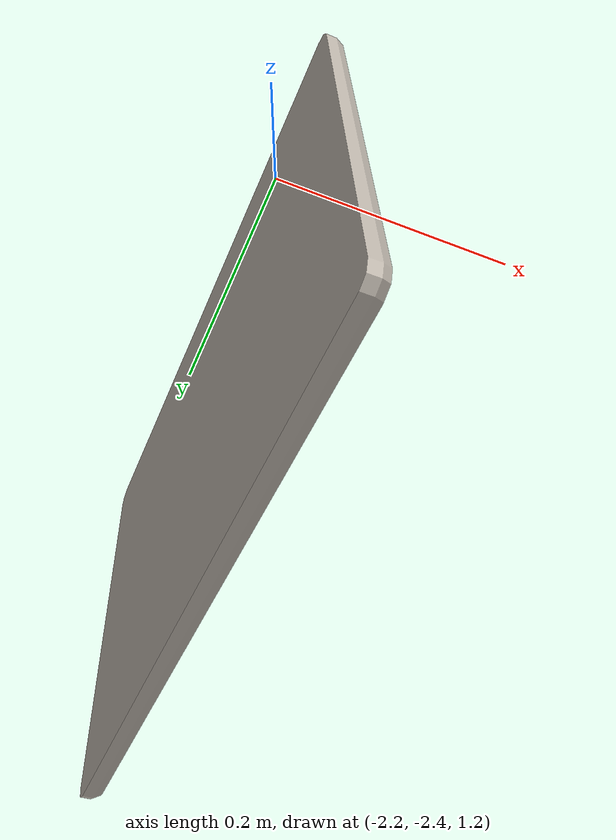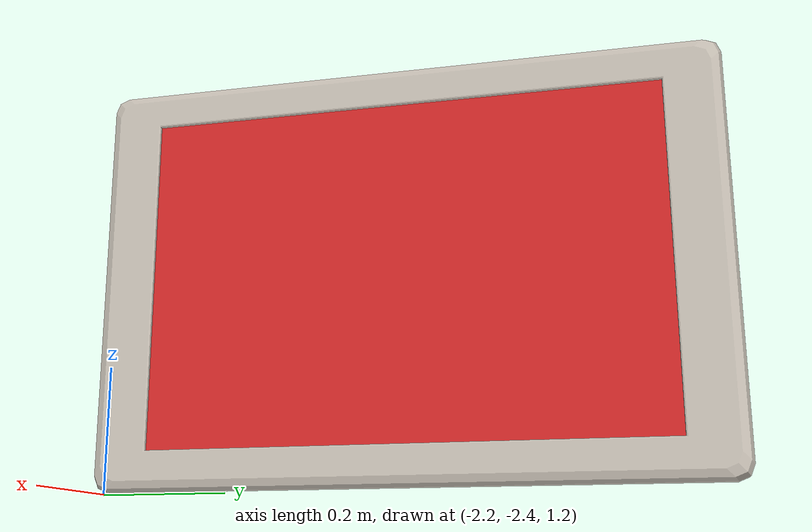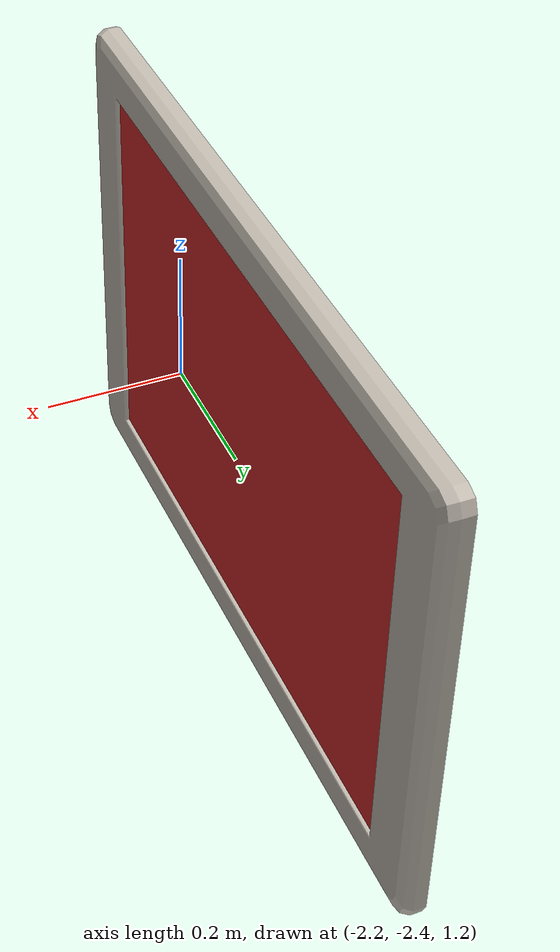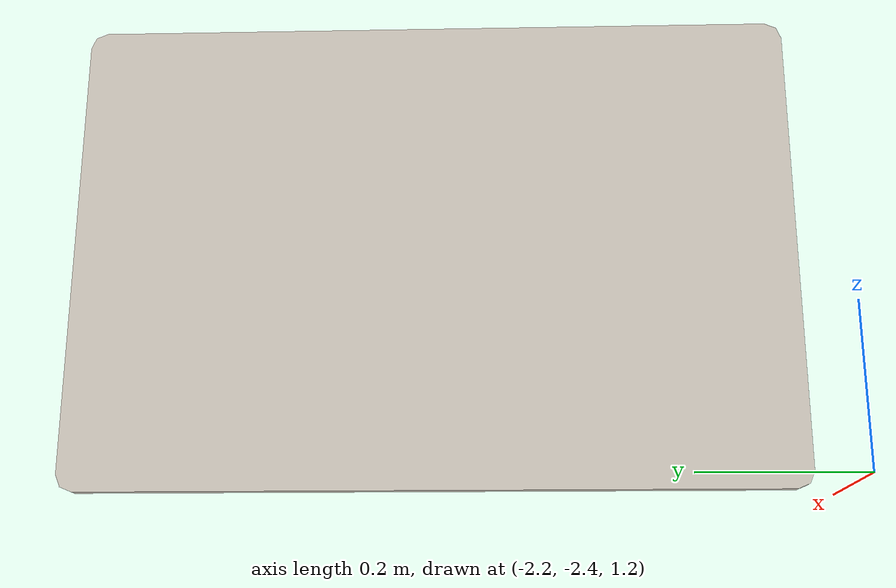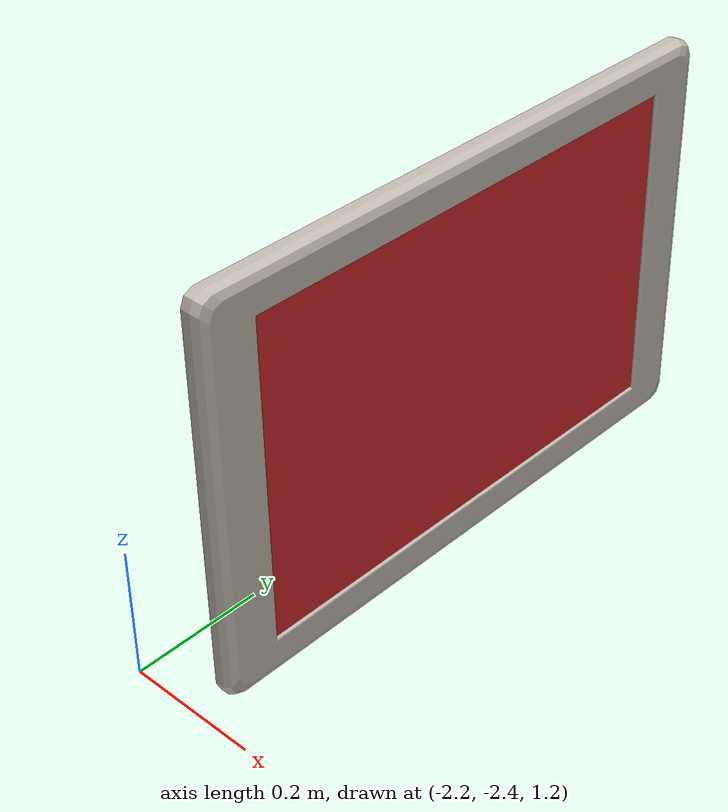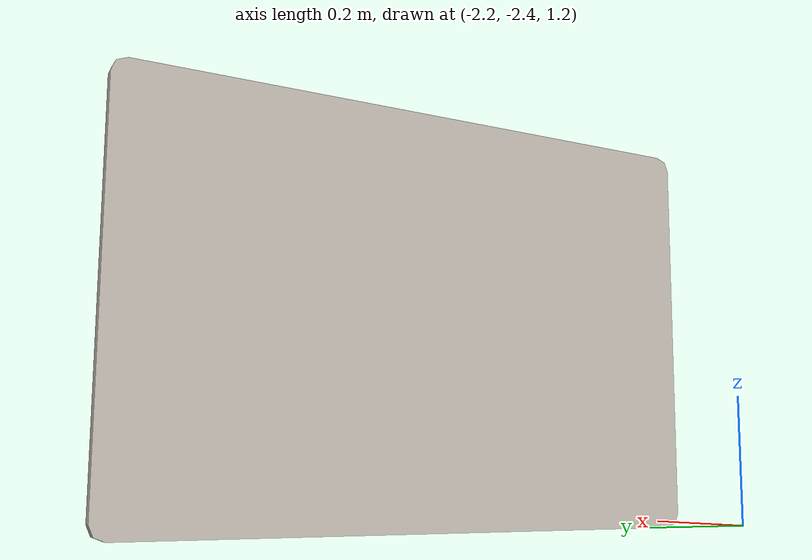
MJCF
<mujoco>
    <visual>
        <global offwidth="4072" offheight="2262" />
        <quality shadowsize="2048" offsamples="8" />
        <headlight diffuse="0.6 0.6 0.6" specular="0 0 0" />
        <map fogstart="6" znear="0.01" />
        <scale forcewidth="0.01" framelength="0.3" framewidth="0.01" />
    </visual>
    <default class="main1">
        <default class="viz_stl_Metal_LR">
            <geom type="mesh" group="1" material="M_Metal_LR" />
        </default>
        <default class="viz_stl_Wood_cube_LR">
            <geom type="mesh" group="1" material="M_Wood_cube_LR" />
        </default>
        <default class="viz_stl_Wood_2d_LR">
            <geom type="mesh" group="1" material="M_Wood_2d_LR" />
        </default>
        <default class="viz_stl_Fabric_cube_LR">
            <geom type="mesh" group="1" material="M_Fabric_cube_LR" />
        </default>
        <default class="viz_stl_Fabric_2d_LR">
            <geom type="mesh" group="1" material="M_Fabric_2d_LR" />
        </default>
        <default class="viz_stl_Painting_cube_LR">
            <geom type="mesh" group="1" material="M_Painting_cube_LR" />
        </default>
        <default class="viz_drawer">
            <joint limited="true" armature="0.1" damping="2" frictionloss="5" />
            <geom contype="0" group="3" rgba="1 0 0 1" />
        </default>
        <default class="viz_body">
            <joint limited="true" armature="0.01" damping="1" frictionloss="0.5" />
            <geom contype="0" group="4" rgba="0 1 0 1" />
        </default>
    </default>
    <asset>
        <texture type="cube" name="T_Wood_cube_LR" file="../playroom/textures/Surface_wood_chipboard.jpg.png" />
        <texture type="2d" name="T_Wood_2d_LR" file="../playroom/textures/Surface_wood_chipboard.jpg.png" />
        <texture type="cube" name="T_Metal_LR" file="../playroom/textures/Texture_P7220210.JPG.png" />
        <texture type="cube" name="T_Fabric_cube_LR" file="../playroom/textures/Blue_Gray_knit_texture.jpg.png" />
        <texture type="2d" name="T_Fabric_2d_LR" file="../playroom/textures/Fabric_length_(AM_842431-1).jpg.png" />
        <texture type="cube" name="T_Painting_cube_LR" file="../playroom/textures/Coloured,_textured_craft_card_edit.jpg.png" />
        <texture type="2d" name="groundplane" builtin="checker" rgb1="0.2 0.3 0.4" rgb2="0.1 0.2 0.3" width="200" height="200" />
        <texture type="skybox" name="skybox" builtin="gradient" mark="random" rgb1="0.4 0.6 0.8" rgb2="0 0 0" markrgb="1 1 1" width="800" height="4800" />
        <material name="M_Fabric_cube_LR" texture="T_Fabric_cube_LR" shininess="0" />
        <material name="M_Fabric_2d_LR" texture="T_Fabric_2d_LR" texuniform="true" texrepeat="3 3" shininess="0" rgba="0.2 0.2 0.2 1" />
        <material name="groundplane" texture="groundplane" texrepeat="20 20" />
        <material name="M_Wood_cube_LR" texture="T_Wood_cube_LR" shininess="0.2" reflectance="0.3" rgba="0.8 0.8 0.8 1" />
        <material name="M_Wood_2d_LR" texture="T_Wood_2d_LR" shininess="0.2" reflectance="0.3" rgba="0.8 0.8 0.8 1" />
        <material name="M_Metal_LR" texture="T_Metal_LR" texrepeat="3 3" reflectance="0.7" />
        <material name="M_Painting_cube_LR" texture="T_Painting_cube_LR" shininess="0.2" reflectance="0.3" />
        <material name="MatViz" specular="1" shininess="0.1" reflectance="0.5" rgba="0.07 0.07 0.1 1" />
        <mesh name="SSC_Body" file="../playroom/meshes//SSC_Body.stl" scale="0.01 0.01 0.01" />
        <mesh name="SSC_Stand" file="../playroom/meshes//SSC_Stand.stl" scale="0.01 0.01 0.01" />
        <mesh name="Table_Top" file="../playroom/meshes//Table_Top.stl" scale="0.01 0.01 0.01" />
        <mesh name="Table_Bottom" file="../playroom/meshes//Table_Bottom.stl" scale="0.01 0.01 0.01" />
        <mesh name="Doorway_Top" file="../playroom/meshes//Doorway_Top.stl" scale="0.01 0.01 0.01" />
        <mesh name="Doorway_Bottom" file="../playroom/meshes//Doorway_Bottom.stl" scale="0.01 0.01 0.01" />
        <mesh name="Window_Top" file="../playroom/meshes//Window_Top.stl" scale="0.01 0.01 0.01" />
        <mesh name="Window_Bottom" file="../playroom/meshes//Window_Bottom.stl" scale="0.01 0.01 0.01" />
        <mesh name="Wall_Top" file="../playroom/meshes//Wall_Top.stl" scale="0.01 0.01 0.01" />
        <mesh name="Wall_Bottom" file="../playroom/meshes//Wall_Bottom.stl" scale="0.01 0.01 0.01" />
        <mesh name="Lamp_Top" file="../playroom/meshes//Lamp_Top.stl" scale="0.01 0.01 0.01" />
        <mesh name="Lamp_Stand" file="../playroom/meshes//Lamp_Stand.stl" scale="0.01 0.01 0.01" />
        <mesh name="Painting_Canvas" file="../playroom/meshes//Painting_Canvas.stl" scale="0.01 0.01 0.01" />
        <mesh name="Painting_Frame" file="../playroom/meshes//Painting_Frame.stl" scale="0.01 0.01 0.01" />
        <mesh name="StudyTable" file="../playroom/meshes//StudyTable.stl" scale="0.01 0.01 0.01" />
        <mesh name="Drawer_Wood" file="../playroom/meshes//Drawer_Wood.stl" scale="0.01 0.01 0.01" />
        <mesh name="Drawer_Handle" file="../playroom/meshes//Drawer_Handle.stl" scale="0.01 0.01 0.01" />
        <mesh name="Slide_Wood" file="../playroom/meshes//Slide_Wood.stl" scale="0.01 0.01 0.01" />
        <mesh name="Slide_Handle" file="../playroom/meshes//Slide_Handle.stl" scale="0.01 0.01 0.01" />
        <mesh name="BlockBin" file="../playroom/meshes//BlockBin.stl" scale="0.01 0.01 0.01" />
    </asset>
    <worldbody>
        <body name="Painting_01" pos="-2.1 -1.9 1.5" quat="-0.707146 0 0 0.707068">
            <inertial pos="2.5287e-10 0.0143313 5.58441e-11" quat="0.5 0.5 0.5 0.5" mass="23.3902" diaginertia="2.21053 1.5358 0.677409" />
            <geom class="viz_stl_Painting_cube_LR" contype="0" conaffinity="0" mesh="Painting_Canvas" />
            <geom class="viz_stl_Metal_LR" contype="0" conaffinity="0" mesh="Painting_Frame" />
        </body>
    </worldbody>
</mujoco>
